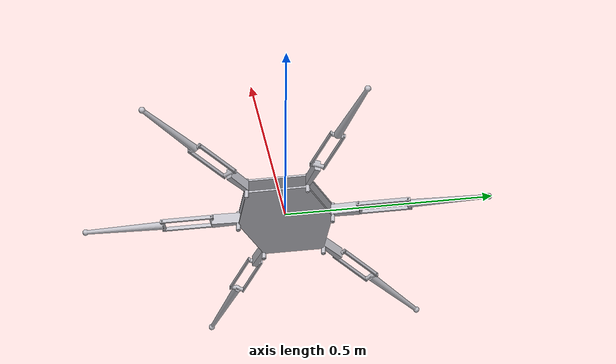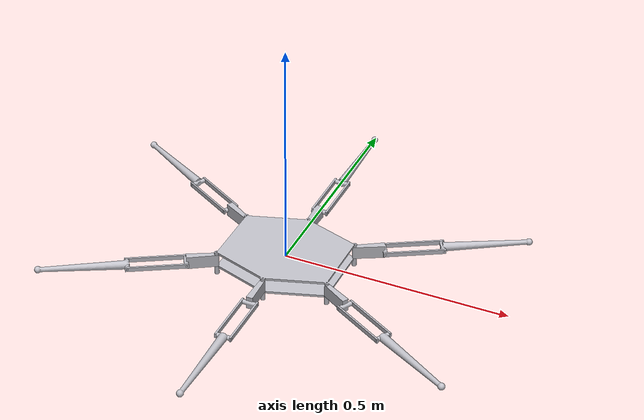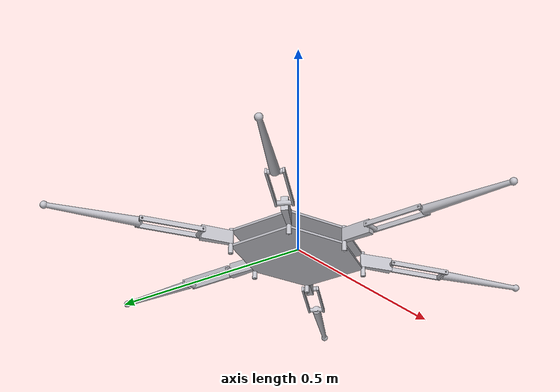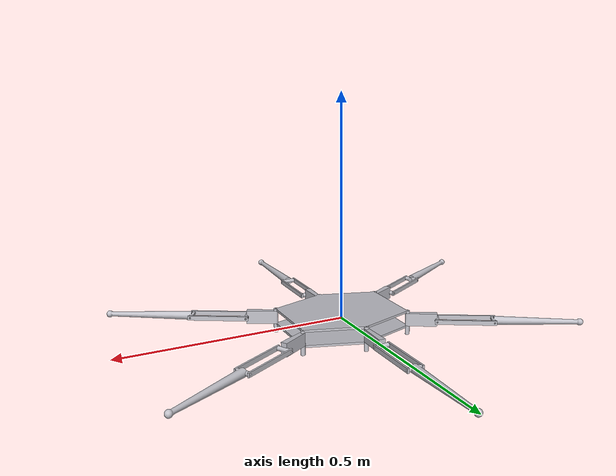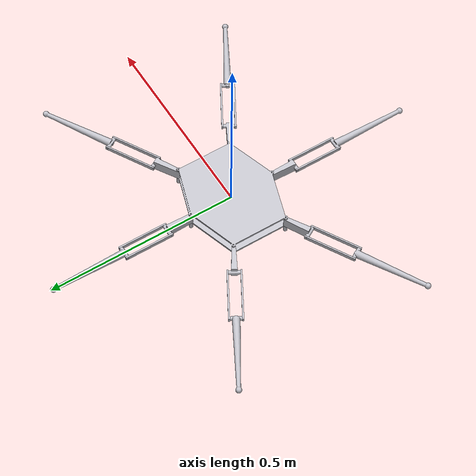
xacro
<?xml version="1.0" ?>
<robot name="hexapod" xmlns:xacro="http://www.ros.org/wiki/xacro">

<xacro:include filename="$(find hexapod_description)/urdf/materials.xacro" />
<xacro:include filename="$(find hexapod_description)/urdf/hexapod.trans" />
<xacro:include filename="$(find hexapod_description)/urdf/hexapod.gazebo" />
<link name="base_link">
  <inertial>
    <origin xyz="-4.934145154198359e-16 9.309707838110111e-17 -0.0003422823434696608" rpy="0 0 0"/>
    <mass value="3.83445621123102"/>
    <inertia ixx="0.01337" iyy="0.019992" izz="0.031085" ixy="-0.0" iyz="0.0" ixz="-0.0"/>
  </inertial>
  <visual>
    <origin xyz="0 0 0" rpy="0 0 0"/>
    <geometry>
      <mesh filename="file://$(find hexapod_description)/meshes/base_link.stl" scale="0.001 0.001 0.001"/>
    </geometry>
    <material name="silver"/>
  </visual>
  <collision>
    <origin xyz="0 0 0" rpy="0 0 0"/>
    <geometry>
      <mesh filename="file://$(find hexapod_description)/meshes/base_link.stl" scale="0.001 0.001 0.001"/>
    </geometry>
  </collision>
</link>

<link name="Tibia2_1">
  <inertial>
    <origin xyz="-0.014500000000000707 0.0771713751585763 0.0" rpy="0 0 0"/>
    <mass value="0.2818804048648"/>
    <inertia ixx="0.000919" iyy="1e-05" izz="0.00092" ixy="-0.0" iyz="0.0" ixz="-0.0"/>
  </inertial>
  <visual>
    <origin xyz="-0.0145 -0.3 -0.0" rpy="0 0 0"/>
    <geometry>
      <mesh filename="file://$(find hexapod_description)/meshes/Tibia2_1.stl" scale="0.001 0.001 0.001"/>
    </geometry>
    <material name="silver"/>
  </visual>
  <collision>
    <origin xyz="-0.0145 -0.3 -0.0" rpy="0 0 0"/>
    <geometry>
      <mesh filename="file://$(find hexapod_description)/meshes/Tibia2_1.stl" scale="0.001 0.001 0.001"/>
    </geometry>
  </collision>
</link>

<link name="Femur2_1">
  <inertial>
    <origin xyz="-0.0145 0.06000000000000413 8.708538218286283e-19" rpy="0 0 0"/>
    <mass value="0.08006166385083642"/>
    <inertia ixx="0.00011" iyy="2.3e-05" izz="0.000131" ixy="0.0" iyz="0.0" ixz="-0.0"/>
  </inertial>
  <visual>
    <origin xyz="-0.0145 -0.18 0.0" rpy="0 0 0"/>
    <geometry>
      <mesh filename="file://$(find hexapod_description)/meshes/Femur2_1.stl" scale="0.001 0.001 0.001"/>
    </geometry>
    <material name="silver"/>
  </visual>
  <collision>
    <origin xyz="-0.0145 -0.18 0.0" rpy="0 0 0"/>
    <geometry>
      <mesh filename="file://$(find hexapod_description)/meshes/Femur2_1.stl" scale="0.001 0.001 0.001"/>
    </geometry>
  </collision>
</link>

<link name="Coxa2_1">
  <inertial>
    <origin xyz="-3.028576848473118e-15 0.03501194549628382 -0.014500000000000004" rpy="0 0 0"/>
    <mass value="0.19798383238710035"/>
    <inertia ixx="9.5e-05" iyy="1.7e-05" izz="8.6e-05" ixy="-0.0" iyz="-0.0" ixz="-0.0"/>
  </inertial>
  <visual>
    <origin xyz="-0.0 -0.115 -0.0145" rpy="0 0 0"/>
    <geometry>
      <mesh filename="file://$(find hexapod_description)/meshes/Coxa2_1.stl" scale="0.001 0.001 0.001"/>
    </geometry>
    <material name="silver"/>
  </visual>
  <collision>
    <origin xyz="-0.0 -0.115 -0.0145" rpy="0 0 0"/>
    <geometry>
      <mesh filename="file://$(find hexapod_description)/meshes/Coxa2_1.stl" scale="0.001 0.001 0.001"/>
    </geometry>
  </collision>
</link>

<link name="Tibia3_1">
  <inertial>
    <origin xyz="-0.07224932663916511 0.024970631745973082 -1.4986968815939349e-16" rpy="0 0 0"/>
    <mass value="0.2754087769663326"/>
    <inertia ixx="0.000221" iyy="0.000645" izz="0.000858" ixy="0.000367" iyz="-0.0" ixz="0.0"/>
  </inertial>
  <visual>
    <origin xyz="0.284601 -0.181057 -0.0" rpy="0 0 0"/>
    <geometry>
      <mesh filename="file://$(find hexapod_description)/meshes/Tibia3_1.stl" scale="0.001 0.001 0.001"/>
    </geometry>
    <material name="silver"/>
  </visual>
  <collision>
    <origin xyz="0.284601 -0.181057 -0.0" rpy="0 0 0"/>
    <geometry>
      <mesh filename="file://$(find hexapod_description)/meshes/Tibia3_1.stl" scale="0.001 0.001 0.001"/>
    </geometry>
  </collision>
</link>

<link name="Femur3_1">
  <inertial>
    <origin xyz="-0.06137697333882122 0.018692999999995713 0.0" rpy="0 0 0"/>
    <mass value="0.08320166385083949"/>
    <inertia ixx="4.8e-05" iyy="9.8e-05" izz="0.000145" ixy="4.3e-05" iyz="0.0" ixz="-0.0"/>
  </inertial>
  <visual>
    <origin xyz="0.176347 -0.118557 -0.0" rpy="0 0 0"/>
    <geometry>
      <mesh filename="file://$(find hexapod_description)/meshes/Femur3_1.stl" scale="0.001 0.001 0.001"/>
    </geometry>
    <material name="silver"/>
  </visual>
  <collision>
    <origin xyz="0.176347 -0.118557 -0.0" rpy="0 0 0"/>
    <geometry>
      <mesh filename="file://$(find hexapod_description)/meshes/Femur3_1.stl" scale="0.001 0.001 0.001"/>
    </geometry>
  </collision>
</link>

<link name="Coxa3_1">
  <inertial>
    <origin xyz="-0.030103479079964468 0.017380405119817185 -0.014552003125930323" rpy="0 0 0"/>
    <mass value="0.1994141995222797"/>
    <inertia ixx="3.7e-05" iyy="7.7e-05" izz="8.7e-05" ixy="3.5e-05" iyz="-0.0" ixz="0.0"/>
  </inertial>
  <visual>
    <origin xyz="0.127306 -0.0735 -0.0145" rpy="0 0 0"/>
    <geometry>
      <mesh filename="file://$(find hexapod_description)/meshes/Coxa3_1.stl" scale="0.001 0.001 0.001"/>
    </geometry>
    <material name="silver"/>
  </visual>
  <collision>
    <origin xyz="0.127306 -0.0735 -0.0145" rpy="0 0 0"/>
    <geometry>
      <mesh filename="file://$(find hexapod_description)/meshes/Coxa3_1.stl" scale="0.001 0.001 0.001"/>
    </geometry>
  </collision>
</link>

<link name="Tibia_1">
  <inertial>
    <origin xyz="0.057749326639162324 0.05008463174597211 -1.49869688159382e-16" rpy="0 0 0"/>
    <mass value="0.2754087769663537"/>
    <inertia ixx="0.000221" iyy="0.000645" izz="0.000858" ixy="-0.000367" iyz="-0.0" ixz="-0.0"/>
  </inertial>
  <visual>
    <origin xyz="-0.299101 -0.155943 -0.0" rpy="0 0 0"/>
    <geometry>
      <mesh filename="file://$(find hexapod_description)/meshes/Tibia_1.stl" scale="0.001 0.001 0.001"/>
    </geometry>
    <material name="silver"/>
  </visual>
  <collision>
    <origin xyz="-0.299101 -0.155943 -0.0" rpy="0 0 0"/>
    <geometry>
      <mesh filename="file://$(find hexapod_description)/meshes/Tibia_1.stl" scale="0.001 0.001 0.001"/>
    </geometry>
  </collision>
</link>

<link name="Femur_1">
  <inertial>
    <origin xyz="0.04687697333882124 0.04380699999999571 0.0" rpy="0 0 0"/>
    <mass value="0.08320166385083949"/>
    <inertia ixx="4.8e-05" iyy="9.8e-05" izz="0.000145" ixy="-4.3e-05" iyz="0.0" ixz="-0.0"/>
  </inertial>
  <visual>
    <origin xyz="-0.190847 -0.093443 -0.0" rpy="0 0 0"/>
    <geometry>
      <mesh filename="file://$(find hexapod_description)/meshes/Femur_1.stl" scale="0.001 0.001 0.001"/>
    </geometry>
    <material name="silver"/>
  </visual>
  <collision>
    <origin xyz="-0.190847 -0.093443 -0.0" rpy="0 0 0"/>
    <geometry>
      <mesh filename="file://$(find hexapod_description)/meshes/Femur_1.stl" scale="0.001 0.001 0.001"/>
    </geometry>
  </collision>
</link>

<link name="Coxa_1">
  <inertial>
    <origin xyz="0.030103479079964524 0.017380405119817185 -0.014552003125930326" rpy="0 0 0"/>
    <mass value="0.1994141995222797"/>
    <inertia ixx="3.7e-05" iyy="7.7e-05" izz="8.7e-05" ixy="-3.5e-05" iyz="-0.0" ixz="-0.0"/>
  </inertial>
  <visual>
    <origin xyz="-0.127306 -0.0735 -0.0145" rpy="0 0 0"/>
    <geometry>
      <mesh filename="file://$(find hexapod_description)/meshes/Coxa_1.stl" scale="0.001 0.001 0.001"/>
    </geometry>
    <material name="silver"/>
  </visual>
  <collision>
    <origin xyz="-0.127306 -0.0735 -0.0145" rpy="0 0 0"/>
    <geometry>
      <mesh filename="file://$(find hexapod_description)/meshes/Coxa_1.stl" scale="0.001 0.001 0.001"/>
    </geometry>
  </collision>
</link>

<link name="Tibia6_1">
  <inertial>
    <origin xyz="0.0577493266391651 -0.05008463174597308 -1.4986968815939349e-16" rpy="0 0 0"/>
    <mass value="0.2754087769663326"/>
    <inertia ixx="0.000221" iyy="0.000645" izz="0.000858" ixy="0.000367" iyz="0.0" ixz="-0.0"/>
  </inertial>
  <visual>
    <origin xyz="-0.299101 0.155943 -0.0" rpy="0 0 0"/>
    <geometry>
      <mesh filename="file://$(find hexapod_description)/meshes/Tibia6_1.stl" scale="0.001 0.001 0.001"/>
    </geometry>
    <material name="silver"/>
  </visual>
  <collision>
    <origin xyz="-0.299101 0.155943 -0.0" rpy="0 0 0"/>
    <geometry>
      <mesh filename="file://$(find hexapod_description)/meshes/Tibia6_1.stl" scale="0.001 0.001 0.001"/>
    </geometry>
  </collision>
</link>

<link name="Femur6_1">
  <inertial>
    <origin xyz="0.04687697333882124 -0.04380699999999571 0.0" rpy="0 0 0"/>
    <mass value="0.08320166385083949"/>
    <inertia ixx="4.8e-05" iyy="9.8e-05" izz="0.000145" ixy="4.3e-05" iyz="0.0" ixz="0.0"/>
  </inertial>
  <visual>
    <origin xyz="-0.190847 0.093443 -0.0" rpy="0 0 0"/>
    <geometry>
      <mesh filename="file://$(find hexapod_description)/meshes/Femur6_1.stl" scale="0.001 0.001 0.001"/>
    </geometry>
    <material name="silver"/>
  </visual>
  <collision>
    <origin xyz="-0.190847 0.093443 -0.0" rpy="0 0 0"/>
    <geometry>
      <mesh filename="file://$(find hexapod_description)/meshes/Femur6_1.stl" scale="0.001 0.001 0.001"/>
    </geometry>
  </collision>
</link>

<link name="Coxa6_1">
  <inertial>
    <origin xyz="0.030103479079964496 -0.017380405119817185 -0.014552003125930323" rpy="0 0 0"/>
    <mass value="0.1994141995222797"/>
    <inertia ixx="3.7e-05" iyy="7.7e-05" izz="8.7e-05" ixy="3.5e-05" iyz="0.0" ixz="-0.0"/>
  </inertial>
  <visual>
    <origin xyz="-0.127306 0.0735 -0.0145" rpy="0 0 0"/>
    <geometry>
      <mesh filename="file://$(find hexapod_description)/meshes/Coxa6_1.stl" scale="0.001 0.001 0.001"/>
    </geometry>
    <material name="silver"/>
  </visual>
  <collision>
    <origin xyz="-0.127306 0.0735 -0.0145" rpy="0 0 0"/>
    <geometry>
      <mesh filename="file://$(find hexapod_description)/meshes/Coxa6_1.stl" scale="0.001 0.001 0.001"/>
    </geometry>
  </collision>
</link>

<link name="Tibia5_1">
  <inertial>
    <origin xyz="-0.014499999999999296 -0.0771713751585763 0.0" rpy="0 0 0"/>
    <mass value="0.2818804048647997"/>
    <inertia ixx="0.000919" iyy="1e-05" izz="0.00092" ixy="-0.0" iyz="0.0" ixz="-0.0"/>
  </inertial>
  <visual>
    <origin xyz="-0.0145 0.3 -0.0" rpy="0 0 0"/>
    <geometry>
      <mesh filename="file://$(find hexapod_description)/meshes/Tibia5_1.stl" scale="0.001 0.001 0.001"/>
    </geometry>
    <material name="silver"/>
  </visual>
  <collision>
    <origin xyz="-0.0145 0.3 -0.0" rpy="0 0 0"/>
    <geometry>
      <mesh filename="file://$(find hexapod_description)/meshes/Tibia5_1.stl" scale="0.001 0.001 0.001"/>
    </geometry>
  </collision>
</link>

<link name="Femur5_1">
  <inertial>
    <origin xyz="-0.0145 -0.06000000000000413 0.0" rpy="0 0 0"/>
    <mass value="0.08006166385083642"/>
    <inertia ixx="0.00011" iyy="2.3e-05" izz="0.000131" ixy="-0.0" iyz="0.0" ixz="0.0"/>
  </inertial>
  <visual>
    <origin xyz="-0.0145 0.18 0.0" rpy="0 0 0"/>
    <geometry>
      <mesh filename="file://$(find hexapod_description)/meshes/Femur5_1.stl" scale="0.001 0.001 0.001"/>
    </geometry>
    <material name="silver"/>
  </visual>
  <collision>
    <origin xyz="-0.0145 0.18 0.0" rpy="0 0 0"/>
    <geometry>
      <mesh filename="file://$(find hexapod_description)/meshes/Femur5_1.stl" scale="0.001 0.001 0.001"/>
    </geometry>
  </collision>
</link>

<link name="Coxa5_1">
  <inertial>
    <origin xyz="-3.028576848473118e-15 -0.03501194549628382 -0.014499999999999997" rpy="0 0 0"/>
    <mass value="0.19798383238710035"/>
    <inertia ixx="9.5e-05" iyy="1.7e-05" izz="8.6e-05" ixy="0.0" iyz="-0.0" ixz="0.0"/>
  </inertial>
  <visual>
    <origin xyz="-0.0 0.115 -0.0145" rpy="0 0 0"/>
    <geometry>
      <mesh filename="file://$(find hexapod_description)/meshes/Coxa5_1.stl" scale="0.001 0.001 0.001"/>
    </geometry>
    <material name="silver"/>
  </visual>
  <collision>
    <origin xyz="-0.0 0.115 -0.0145" rpy="0 0 0"/>
    <geometry>
      <mesh filename="file://$(find hexapod_description)/meshes/Coxa5_1.stl" scale="0.001 0.001 0.001"/>
    </geometry>
  </collision>
</link>

<link name="Tibia4_1">
  <inertial>
    <origin xyz="-0.07224932663916234 -0.02497063174597211 -1.49869688159382e-16" rpy="0 0 0"/>
    <mass value="0.2754087769663537"/>
    <inertia ixx="0.000221" iyy="0.000645" izz="0.000858" ixy="-0.000367" iyz="0.0" ixz="0.0"/>
  </inertial>
  <visual>
    <origin xyz="0.284601 0.181057 -0.0" rpy="0 0 0"/>
    <geometry>
      <mesh filename="file://$(find hexapod_description)/meshes/Tibia4_1.stl" scale="0.001 0.001 0.001"/>
    </geometry>
    <material name="silver"/>
  </visual>
  <collision>
    <origin xyz="0.284601 0.181057 -0.0" rpy="0 0 0"/>
    <geometry>
      <mesh filename="file://$(find hexapod_description)/meshes/Tibia4_1.stl" scale="0.001 0.001 0.001"/>
    </geometry>
  </collision>
</link>

<link name="Femur4_1">
  <inertial>
    <origin xyz="-0.06137697333882122 -0.018692999999995713 0.0" rpy="0 0 0"/>
    <mass value="0.08320166385083949"/>
    <inertia ixx="4.8e-05" iyy="9.8e-05" izz="0.000145" ixy="-4.3e-05" iyz="0.0" ixz="0.0"/>
  </inertial>
  <visual>
    <origin xyz="0.176347 0.118557 -0.0" rpy="0 0 0"/>
    <geometry>
      <mesh filename="file://$(find hexapod_description)/meshes/Femur4_1.stl" scale="0.001 0.001 0.001"/>
    </geometry>
    <material name="silver"/>
  </visual>
  <collision>
    <origin xyz="0.176347 0.118557 -0.0" rpy="0 0 0"/>
    <geometry>
      <mesh filename="file://$(find hexapod_description)/meshes/Femur4_1.stl" scale="0.001 0.001 0.001"/>
    </geometry>
  </collision>
</link>

<link name="Coxa4_1">
  <inertial>
    <origin xyz="-0.030103479079964524 -0.017380405119817185 -0.014552003125930326" rpy="0 0 0"/>
    <mass value="0.1994141995222797"/>
    <inertia ixx="3.7e-05" iyy="7.7e-05" izz="8.7e-05" ixy="-3.5e-05" iyz="0.0" ixz="0.0"/>
  </inertial>
  <visual>
    <origin xyz="0.127306 0.0735 -0.0145" rpy="0 0 0"/>
    <geometry>
      <mesh filename="file://$(find hexapod_description)/meshes/Coxa4_1.stl" scale="0.001 0.001 0.001"/>
    </geometry>
    <material name="silver"/>
  </visual>
  <collision>
    <origin xyz="0.127306 0.0735 -0.0145" rpy="0 0 0"/>
    <geometry>
      <mesh filename="file://$(find hexapod_description)/meshes/Coxa4_1.stl" scale="0.001 0.001 0.001"/>
    </geometry>
  </collision>
</link>

<joint name="Tibia2" type="continuous">
  <origin xyz="0.0 0.12 0.0" rpy="0 0 0"/>
  <parent link="Femur2_1"/>
  <child link="Tibia2_1"/>
  <axis xyz="1.0 0.0 0.0"/>
</joint>

<joint name="Femur2" type="continuous">
  <origin xyz="0.0145 0.065 -0.0145" rpy="0 0 0"/>
  <parent link="Coxa2_1"/>
  <child link="Femur2_1"/>
  <axis xyz="-1.0 0.0 0.0"/>
</joint>

<joint name="Coxa2" type="continuous">
  <origin xyz="0.0 0.115 0.0145" rpy="0 0 0"/>
  <parent link="base_link"/>
  <child link="Coxa2_1"/>
  <axis xyz="0.0 0.0 1.0"/>
</joint>

<joint name="Tibia3" type="continuous">
  <origin xyz="-0.108254 0.0625 0.0" rpy="0 0 0"/>
  <parent link="Femur3_1"/>
  <child link="Tibia3_1"/>
  <axis xyz="0.5 0.866025 0.0"/>
</joint>

<joint name="Femur3" type="continuous">
  <origin xyz="-0.049041 0.045057 -0.0145" rpy="0 0 0"/>
  <parent link="Coxa3_1"/>
  <child link="Femur3_1"/>
  <axis xyz="-0.5 -0.866025 0.0"/>
</joint>

<joint name="Coxa3" type="continuous">
  <origin xyz="-0.127306 0.0735 0.0145" rpy="0 0 0"/>
  <parent link="base_link"/>
  <child link="Coxa3_1"/>
  <axis xyz="0.0 0.0 1.0"/>
</joint>

<joint name="Tibia1" type="continuous">
  <origin xyz="0.108254 0.0625 0.0" rpy="0 0 0"/>
  <parent link="Femur_1"/>
  <child link="Tibia_1"/>
  <axis xyz="0.5 -0.866025 0.0"/>
</joint>

<joint name="Femur1" type="continuous">
  <origin xyz="0.063541 0.019943 -0.0145" rpy="0 0 0"/>
  <parent link="Coxa_1"/>
  <child link="Femur_1"/>
  <axis xyz="-0.5 0.866025 0.0"/>
</joint>

<joint name="Coxa1" type="continuous">
  <origin xyz="0.127306 0.0735 0.0145" rpy="0 0 0"/>
  <parent link="base_link"/>
  <child link="Coxa_1"/>
  <axis xyz="0.0 0.0 1.0"/>
</joint>

<joint name="Tibia6" type="continuous">
  <origin xyz="0.108254 -0.0625 0.0" rpy="0 0 0"/>
  <parent link="Femur6_1"/>
  <child link="Tibia6_1"/>
  <axis xyz="0.5 0.866025 0.0"/>
</joint>

<joint name="Femur6" type="continuous">
  <origin xyz="0.063541 -0.019943 -0.0145" rpy="0 0 0"/>
  <parent link="Coxa6_1"/>
  <child link="Femur6_1"/>
  <axis xyz="-0.5 -0.866025 0.0"/>
</joint>

<joint name="Coxa6" type="continuous">
  <origin xyz="0.127306 -0.0735 0.0145" rpy="0 0 0"/>
  <parent link="base_link"/>
  <child link="Coxa6_1"/>
  <axis xyz="0.0 0.0 1.0"/>
</joint>

<joint name="Tibia5" type="continuous">
  <origin xyz="0.0 -0.12 0.0" rpy="0 0 0"/>
  <parent link="Femur5_1"/>
  <child link="Tibia5_1"/>
  <axis xyz="1.0 0.0 0.0"/>
</joint>

<joint name="Femur5" type="continuous">
  <origin xyz="0.0145 -0.065 -0.0145" rpy="0 0 0"/>
  <parent link="Coxa5_1"/>
  <child link="Femur5_1"/>
  <axis xyz="-1.0 0.0 0.0"/>
</joint>

<joint name="Coxa5" type="continuous">
  <origin xyz="0.0 -0.115 0.0145" rpy="0 0 0"/>
  <parent link="base_link"/>
  <child link="Coxa5_1"/>
  <axis xyz="0.0 0.0 1.0"/>
</joint>

<joint name="Tibia4" type="continuous">
  <origin xyz="-0.108254 -0.0625 0.0" rpy="0 0 0"/>
  <parent link="Femur4_1"/>
  <child link="Tibia4_1"/>
  <axis xyz="0.5 -0.866025 0.0"/>
</joint>

<joint name="Femur4" type="continuous">
  <origin xyz="-0.049041 -0.045057 -0.0145" rpy="0 0 0"/>
  <parent link="Coxa4_1"/>
  <child link="Femur4_1"/>
  <axis xyz="-0.5 0.866025 0.0"/>
</joint>

<joint name="Coxa4" type="continuous">
  <origin xyz="-0.127306 -0.0735 0.0145" rpy="0 0 0"/>
  <parent link="base_link"/>
  <child link="Coxa4_1"/>
  <axis xyz="0.0 0.0 1.0"/>
</joint>

</robot>

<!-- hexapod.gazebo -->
<robot name="hexapod" xmlns:xacro="http://www.ros.org/wiki/xacro" >

<xacro:property name="body_color" value="Gazebo/Silver" />

<gazebo>
  <plugin name="control" filename="libgazebo_ros_control.so"/>
</gazebo>
<gazebo reference="base_link">
  <material>${body_color}</material>
  <mu1>0.2</mu1>
  <mu2>0.2</mu2>
  <self_collide>true</self_collide>
  <gravity>true</gravity>
</gazebo>

<gazebo reference="Tibia2_1">
  <material>${body_color}</material>
  <mu1>0.2</mu1>
  <mu2>0.2</mu2>
  <self_collide>true</self_collide>
</gazebo>

<gazebo reference="Femur2_1">
  <material>${body_color}</material>
  <mu1>0.2</mu1>
  <mu2>0.2</mu2>
  <self_collide>true</self_collide>
</gazebo>

<gazebo reference="Coxa2_1">
  <material>${body_color}</material>
  <mu1>0.2</mu1>
  <mu2>0.2</mu2>
  <self_collide>true</self_collide>
</gazebo>

<gazebo reference="Tibia3_1">
  <material>${body_color}</material>
  <mu1>0.2</mu1>
  <mu2>0.2</mu2>
  <self_collide>true</self_collide>
</gazebo>

<gazebo reference="Femur3_1">
  <material>${body_color}</material>
  <mu1>0.2</mu1>
  <mu2>0.2</mu2>
  <self_collide>true</self_collide>
</gazebo>

<gazebo reference="Coxa3_1">
  <material>${body_color}</material>
  <mu1>0.2</mu1>
  <mu2>0.2</mu2>
  <self_collide>true</self_collide>
</gazebo>

<gazebo reference="Tibia_1">
  <material>${body_color}</material>
  <mu1>0.2</mu1>
  <mu2>0.2</mu2>
  <self_collide>true</self_collide>
</gazebo>

<gazebo reference="Femur_1">
  <material>${body_color}</material>
  <mu1>0.2</mu1>
  <mu2>0.2</mu2>
  <self_collide>true</self_collide>
</gazebo>

<gazebo reference="Coxa_1">
  <material>${body_color}</material>
  <mu1>0.2</mu1>
  <mu2>0.2</mu2>
  <self_collide>true</self_collide>
</gazebo>

<gazebo reference="Tibia6_1">
  <material>${body_color}</material>
  <mu1>0.2</mu1>
  <mu2>0.2</mu2>
  <self_collide>true</self_collide>
</gazebo>

<gazebo reference="Femur6_1">
  <material>${body_color}</material>
  <mu1>0.2</mu1>
  <mu2>0.2</mu2>
  <self_collide>true</self_collide>
</gazebo>

<gazebo reference="Coxa6_1">
  <material>${body_color}</material>
  <mu1>0.2</mu1>
  <mu2>0.2</mu2>
  <self_collide>true</self_collide>
</gazebo>

<gazebo reference="Tibia5_1">
  <material>${body_color}</material>
  <mu1>0.2</mu1>
  <mu2>0.2</mu2>
  <self_collide>true</self_collide>
</gazebo>

<gazebo reference="Femur5_1">
  <material>${body_color}</material>
  <mu1>0.2</mu1>
  <mu2>0.2</mu2>
  <self_collide>true</self_collide>
</gazebo>

<gazebo reference="Coxa5_1">
  <material>${body_color}</material>
  <mu1>0.2</mu1>
  <mu2>0.2</mu2>
  <self_collide>true</self_collide>
</gazebo>

<gazebo reference="Tibia4_1">
  <material>${body_color}</material>
  <mu1>0.2</mu1>
  <mu2>0.2</mu2>
  <self_collide>true</self_collide>
</gazebo>

<gazebo reference="Femur4_1">
  <material>${body_color}</material>
  <mu1>0.2</mu1>
  <mu2>0.2</mu2>
  <self_collide>true</self_collide>
</gazebo>

<gazebo reference="Coxa4_1">
  <material>${body_color}</material>
  <mu1>0.2</mu1>
  <mu2>0.2</mu2>
  <self_collide>true</self_collide>
</gazebo>

</robot>
